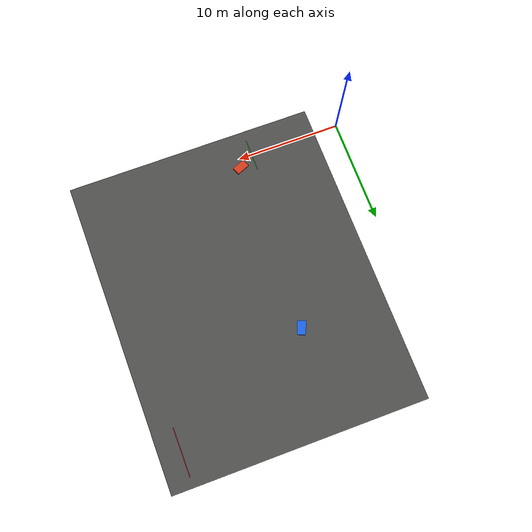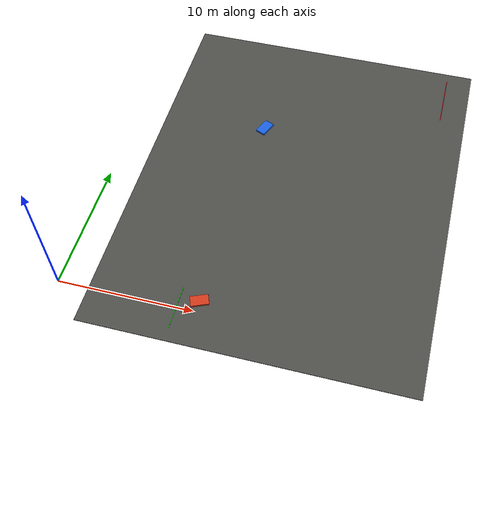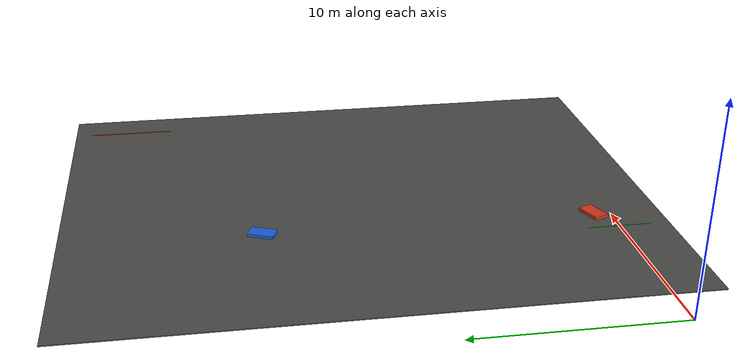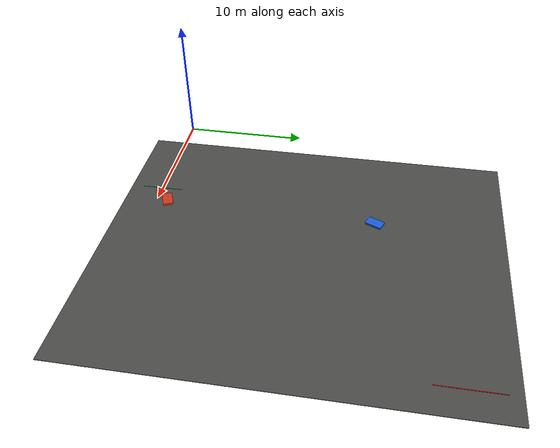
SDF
<sdf version="1.10">
 <world name="s_curve_avoidance">
  <physics name="default_physics" type="ode">
   <max_step_size>0.010</max_step_size>
   <real_time_factor>1.0</real_time_factor>
  </physics>
  <plugin filename="gz-sim-physics-system" name="gz::sim::systems::Physics"/>
  <plugin filename="gz-sim-user-commands-system" name="gz::sim::systems::UserCommands"/>
  <plugin filename="gz-sim-scene-broadcaster-system" name="gz::sim::systems::SceneBroadcaster"/>
  <plugin filename="gz-sim-sensors-system" name="gz::sim::systems::Sensors">
   <render_engine>ogre2</render_engine>
  </plugin>
  <gravity>0 0 -9.81</gravity>
  <scene>
   <ambient>0.34 0.35 0.36 1</ambient>
   <background>0.62 0.74 0.88 1</background>
   <shadows>true</shadows>
  </scene>
  <light type="directional" name="sun">
   <pose>20 10 22 0 0 0</pose>
   <diffuse>0.92 0.90 0.86 1</diffuse>
   <specular>0.08 0.08 0.08 1</specular>
   <direction>-0.46 -0.26 -0.85</direction>
  </light>
  <model name="s_curve_course">
   <static>true</static>
   <link name="continuous_course">
    <collision name="road_collision">
     <pose>14.245784 12.356933 -0.050000 0 0 0</pose>
     <geometry><box><size>23.991569 29.863866 0.050000</size></box></geometry>
    </collision>
    <visual name="road_visual">
     <pose>14.245784 12.356933 -0.050000 0 0 0</pose>
     <geometry><box><size>23.991569 29.863866 0.050000</size></box></geometry>
     <material>
      <ambient>0.20 0.20 0.19 1</ambient>
      <diffuse>0.30 0.30 0.29 1</diffuse>
      <specular>0.02 0.02 0.02 1</specular>
      <pbr>
       <metal>
        <albedo_map>materials/textures/asphalt_track_albedo.png</albedo_map>
        <roughness>0.92</roughness>
        <metalness>0.0</metalness>
       </metal>
      </pbr>
     </material>
    </visual>
   </link>
  </model>
  <model name="start_line">
   <static>true</static>
   <link name="line">
    <visual name="start_line_visual">
     <pose>8.750000 0.000000 0.009 0 0 1.570796</pose>
     <geometry><box><size>3.200000 0.050000 0.012000</size></box></geometry>
     <material><ambient>0.10 0.90 0.10 1</ambient><diffuse>0.10 0.90 0.10 1</diffuse></material>
    </visual>
   </link>
  </model>
  <model name="finish_line">
   <static>true</static>
   <link name="line">
    <visual name="finish_line_visual">
     <pose>24.241569 24.113866 0.009 0 0 1.570796</pose>
     <geometry><box><size>4.500000 0.050000 0.012000</size></box></geometry>
     <material><ambient>0.95 0.10 0.10 1</ambient><diffuse>0.95 0.10 0.10 1</diffuse></material>
    </visual>
   </link>
  </model>
  <model name="obstacle_1">
   <static>true</static>
   <pose>10.180988 0.862285 0.075 0 0 0.387500</pose>
   <link name="box_link">
    <collision name="collision"><geometry><box><size>1.30 0.78 0.15</size></box></geometry></collision>
    <visual name="visual">
     <geometry><box><size>1.30 0.78 0.15</size></box></geometry>
     <material><ambient>0.82 0.22 0.10 1</ambient><diffuse>0.82 0.22 0.10 1</diffuse></material>
    </visual>
   </link>
  </model>
  <model name="obstacle_2">
   <static>true</static>
   <pose>10.468823 17.480728 0.075 0 0 1.177672</pose>
   <link name="box_link">
    <collision name="collision"><geometry><box><size>1.30 0.78 0.15</size></box></geometry></collision>
    <visual name="visual">
     <geometry><box><size>1.30 0.78 0.15</size></box></geometry>
     <material><ambient>0.10 0.38 0.88 1</ambient><diffuse>0.10 0.38 0.88 1</diffuse></material>
    </visual>
   </link>
  </model>
 </world>
</sdf>
